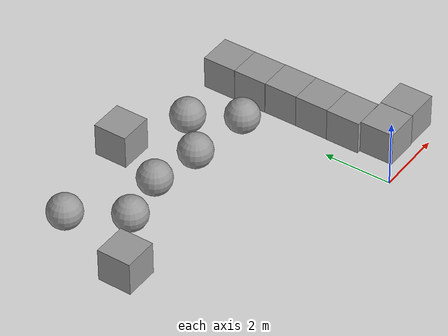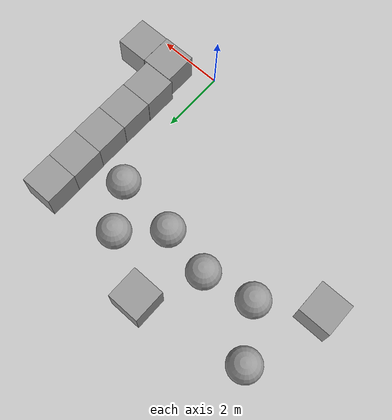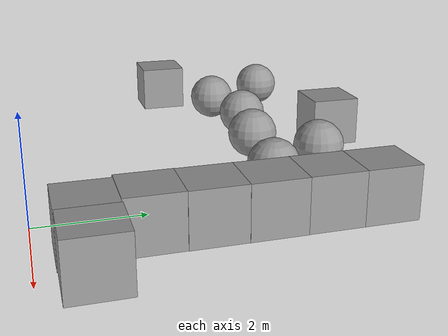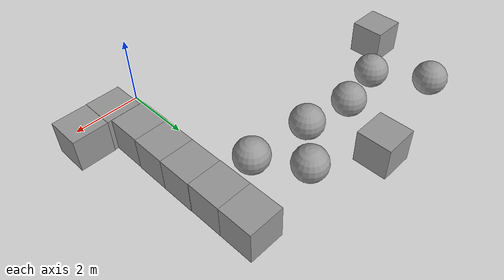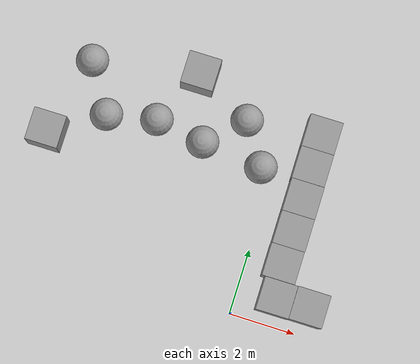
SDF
<sdf version="1.6">
 <world name="default">
  <gravity>0 0 -9.8</gravity>
  <magnetic_field>6e-06 2.3e-05 -4.2e-05</magnetic_field>
  <atmosphere type="adiabatic"/>
  <physics name="default_physics" default="0" type="ode">
   <max_step_size>0.001</max_step_size>
   <real_time_factor>1</real_time_factor>
   <real_time_update_rate>1000</real_time_update_rate>
  </physics>
  <scene>
   <ambient>0.4 0.4 0.4 1</ambient>
   <background>0.7 0.7 0.7 1</background>
   <shadows>1</shadows>
   <grid>0</grid>
   <origin_visual>0</origin_visual>
  </scene>
  <spherical_coordinates>
   <surface_model>EARTH_WGS84</surface_model>
   <latitude_deg>0</latitude_deg>
   <longitude_deg>0</longitude_deg>
   <elevation>0</elevation>
   <heading_deg>0</heading_deg>
  </spherical_coordinates>
  <light name="RetailShop_CeilingLight_001" type="point">
   <pose>2.77442 -3.62815 3.17847 0 -0 0</pose>
   <diffuse>0.5 0.5 0.5 1</diffuse>
   <specular>0.1 0.1 0.1 1</specular>
   <attenuation>
    <range>20</range>
    <constant>0.32</constant>
    <linear>0.01</linear>
    <quadratic>0.03</quadratic>
   </attenuation>
   <cast_shadows>0</cast_shadows>
   <direction>0 0 -1</direction>
  </light>
  <light name="RetailShop_CeilingLight_002" type="point">
   <pose>5.38399 -5.38371 3.17847 0 -0 0</pose>
   <diffuse>0.5 0.5 0.5 1</diffuse>
   <specular>0.1 0.1 0.1 1</specular>
   <attenuation>
    <range>20</range>
    <constant>0.32</constant>
    <linear>0.01</linear>
    <quadratic>0.03</quadratic>
   </attenuation>
   <cast_shadows>0</cast_shadows>
   <direction>0 0 -1</direction>
  </light>
  <light name="RetailShop_CeilingLight_003" type="point">
   <pose>5.38399 0.04192 3.17847 0 -0 0</pose>
   <diffuse>0.5 0.5 0.5 1</diffuse>
   <specular>0.1 0.1 0.1 1</specular>
   <attenuation>
    <range>20</range>
    <constant>0.32</constant>
    <linear>0.01</linear>
    <quadratic>0.03</quadratic>
   </attenuation>
   <cast_shadows>0</cast_shadows>
   <direction>0 0 -1</direction>
  </light>
  <light name="RetailShop_CeilingLight_004" type="point">
   <pose>-3.21067 -5.38371 3.17847 0 -0 0</pose>
   <diffuse>0.5 0.5 0.5 1</diffuse>
   <specular>0.1 0.1 0.1 1</specular>
   <attenuation>
    <range>20</range>
    <constant>0.32</constant>
    <linear>0.01</linear>
    <quadratic>0.03</quadratic>
   </attenuation>
   <cast_shadows>0</cast_shadows>
   <direction>0 0 -1</direction>
  </light>
  <light name="RetailShop_CeilingLight_005" type="point">
   <pose>-3.271 2.68593 3.17847 0 -0 0</pose>
   <diffuse>0.5 0.5 0.5 1</diffuse>
   <specular>0.1 0.1 0.1 1</specular>
   <attenuation>
    <range>20</range>
    <constant>0.32</constant>
    <linear>0.01</linear>
    <quadratic>0.03</quadratic>
   </attenuation>
   <cast_shadows>0</cast_shadows>
   <direction>0 0 -1</direction>
  </light>
  <light name="RetailShop_CeilingLight_006" type="point">
   <pose>1.4932 4.69237 3.17847 0 -0 0</pose>
   <diffuse>0.5 0.5 0.5 1</diffuse>
   <specular>0.1 0.1 0.1 1</specular>
   <attenuation>
    <range>20</range>
    <constant>0.32</constant>
    <linear>0.01</linear>
    <quadratic>0.03</quadratic>
   </attenuation>
   <cast_shadows>0</cast_shadows>
   <direction>0 0 -1</direction>
  </light>
  <audio><device>default</device></audio>
  <light name="user_directional_light_0" type="directional">
   <pose>1.49712 -12.0596 1 0 -0 0</pose>
   <diffuse>0.5 0.5 0.5 1</diffuse>
   <specular>0.1 0.1 0.1 1</specular>
   <direction>0.1 0.1 -0.9</direction>
   <attenuation>
    <range>20</range>
    <constant>0.5</constant>
    <linear>0.01</linear>
    <quadratic>0.001</quadratic>
   </attenuation>
  </light>
  <model name="unit_sphere_1">
   <pose>-5.30182 4.57371 0.513382 0 -0 0</pose>
   <link name="link">
    <inertial>
     <mass>1</mass>
     <inertia><ixx>0.1</ixx><ixy>0</ixy><ixz>0</ixz><iyy>0.1</iyy><iyz>0</iyz><izz>0.1</izz></inertia>
    </inertial>
    <collision name="collision"><geometry><sphere><radius>0.5</radius></sphere></geometry></collision>
    <visual name="visual">
     <geometry><sphere><radius>0.5</radius></sphere></geometry>
     <material>
      <script><name>Gazebo/Grey</name><uri>file://media/materials/scripts/gazebo.material</uri></script>
     </material>
    </visual>
   </link>
  </model>
  <model name="unit_box">
   <pose>-2.96245 6.59694 0.513382 -0 -0 -2.1e-05</pose>
   <link name="link">
    <inertial>
     <mass>1</mass>
     <inertia>
      <ixx>0.166667</ixx>
      <ixy>0</ixy>
      <ixz>0</ixz>
      <iyy>0.166667</iyy>
      <iyz>0</iyz>
      <izz>0.166667</izz>
     </inertia>
    </inertial>
    <collision name="collision"><geometry><box><size>1 1 1</size></box></geometry></collision>
    <visual name="visual">
     <geometry><box><size>1 1 1</size></box></geometry>
     <material>
      <script><name>Gazebo/Grey</name><uri>file://media/materials/scripts/gazebo.material</uri></script>
     </material>
    </visual>
   </link>
  </model>
  <model name="unit_box_0">
   <pose>-6.84715 3.59268 0.513382 -0 -0 -0</pose>
   <link name="link">
    <inertial>
     <mass>1</mass>
     <inertia>
      <ixx>0.166667</ixx>
      <ixy>0</ixy>
      <ixz>0</ixz>
      <iyy>0.166667</iyy>
      <iyz>0</iyz>
      <izz>0.166667</izz>
     </inertia>
    </inertial>
    <collision name="collision"><geometry><box><size>1 1 1</size></box></geometry></collision>
    <visual name="visual">
     <geometry><box><size>1 1 1</size></box></geometry>
     <material>
      <script><name>Gazebo/Grey</name><uri>file://media/materials/scripts/gazebo.material</uri></script>
     </material>
    </visual>
   </link>
  </model>
  <model name="unit_sphere_2">
   <pose>-6.20529 6.0175 0.513382 0 -0 0</pose>
   <link name="link">
    <inertial>
     <mass>1</mass>
     <inertia><ixx>0.1</ixx><ixy>0</ixy><ixz>0</ixz><iyy>0.1</iyy><iyz>0</iyz><izz>0.1</izz></inertia>
    </inertial>
    <collision name="collision"><geometry><sphere><radius>0.5</radius></sphere></geometry></collision>
    <visual name="visual">
     <geometry><sphere><radius>0.5</radius></sphere></geometry>
     <material>
      <script><name>Gazebo/Grey</name><uri>file://media/materials/scripts/gazebo.material</uri></script>
     </material>
    </visual>
   </link>
  </model>
  <model name="unit_box_1">
   <pose>2.14945 0.853784 0.513381 1e-06 9e-06 -0.000312</pose>
   <link name="link">
    <inertial>
     <mass>1</mass>
     <inertia>
      <ixx>0.166667</ixx>
      <ixy>0</ixy>
      <ixz>0</ixz>
      <iyy>0.166667</iyy>
      <iyz>0</iyz>
      <izz>0.166667</izz>
     </inertia>
    </inertial>
    <collision name="collision"><geometry><box><size>1 1 1</size></box></geometry></collision>
    <visual name="visual">
     <geometry><box><size>1 1 1</size></box></geometry>
     <material>
      <script><name>Gazebo/Grey</name><uri>file://media/materials/scripts/gazebo.material</uri></script>
     </material>
    </visual>
   </link>
  </model>
  <model name="unit_box_2">
   <pose>1.14803 0.840108 0.513382 0 -0 0.002564</pose>
   <link name="link">
    <inertial>
     <mass>1</mass>
     <inertia>
      <ixx>0.166667</ixx>
      <ixy>0</ixy>
      <ixz>0</ixz>
      <iyy>0.166667</iyy>
      <iyz>0</iyz>
      <izz>0.166667</izz>
     </inertia>
    </inertial>
    <collision name="collision"><geometry><box><size>1 1 1</size></box></geometry></collision>
    <visual name="visual">
     <geometry><box><size>1 1 1</size></box></geometry>
     <material>
      <script><name>Gazebo/Grey</name><uri>file://media/materials/scripts/gazebo.material</uri></script>
     </material>
    </visual>
   </link>
  </model>
  <model name="unit_box_3">
   <pose>1.03556 1.84428 0.513377 -1e-06 -8e-06 0.002206</pose>
   <link name="link">
    <inertial>
     <mass>1</mass>
     <inertia>
      <ixx>0.166667</ixx>
      <ixy>0</ixy>
      <ixz>0</ixz>
      <iyy>0.166667</iyy>
      <iyz>0</iyz>
      <izz>0.166667</izz>
     </inertia>
    </inertial>
    <collision name="collision"><geometry><box><size>1 1 1</size></box></geometry></collision>
    <visual name="visual">
     <geometry><box><size>1 1 1</size></box></geometry>
     <material>
      <script><name>Gazebo/Grey</name><uri>file://media/materials/scripts/gazebo.material</uri></script>
     </material>
    </visual>
   </link>
  </model>
  <model name="unit_box_4">
   <pose>1.04336 2.84453 0.513382 0 -0 0.002335</pose>
   <link name="link">
    <inertial>
     <mass>1</mass>
     <inertia>
      <ixx>0.166667</ixx>
      <ixy>0</ixy>
      <ixz>0</ixz>
      <iyy>0.166667</iyy>
      <iyz>0</iyz>
      <izz>0.166667</izz>
     </inertia>
    </inertial>
    <collision name="collision"><geometry><box><size>1 1 1</size></box></geometry></collision>
    <visual name="visual">
     <geometry><box><size>1 1 1</size></box></geometry>
     <material>
      <script><name>Gazebo/Grey</name><uri>file://media/materials/scripts/gazebo.material</uri></script>
     </material>
    </visual>
   </link>
  </model>
  <model name="unit_box_5">
   <pose>1.04417 3.84474 0.513382 0 -0 0.002259</pose>
   <link name="link">
    <inertial>
     <mass>1</mass>
     <inertia>
      <ixx>0.166667</ixx>
      <ixy>0</ixy>
      <ixz>0</ixz>
      <iyy>0.166667</iyy>
      <iyz>0</iyz>
      <izz>0.166667</izz>
     </inertia>
    </inertial>
    <collision name="collision"><geometry><box><size>1 1 1</size></box></geometry></collision>
    <visual name="visual">
     <geometry><box><size>1 1 1</size></box></geometry>
     <material>
      <script><name>Gazebo/Grey</name><uri>file://media/materials/scripts/gazebo.material</uri></script>
     </material>
    </visual>
   </link>
  </model>
  <model name="unit_box_6">
   <pose>1.03397 4.84474 0.513382 0 -0 0.002249</pose>
   <link name="link">
    <inertial>
     <mass>1</mass>
     <inertia>
      <ixx>0.166667</ixx>
      <ixy>0</ixy>
      <ixz>0</ixz>
      <iyy>0.166667</iyy>
      <iyz>0</iyz>
      <izz>0.166667</izz>
     </inertia>
    </inertial>
    <collision name="collision"><geometry><box><size>1 1 1</size></box></geometry></collision>
    <visual name="visual">
     <geometry><box><size>1 1 1</size></box></geometry>
     <material>
      <script><name>Gazebo/Grey</name><uri>file://media/materials/scripts/gazebo.material</uri></script>
     </material>
    </visual>
   </link>
  </model>
  <model name="unit_box_7">
   <pose>1.03133 5.84475 0.513382 0 -0 0.002209</pose>
   <link name="link">
    <inertial>
     <mass>1</mass>
     <inertia>
      <ixx>0.166667</ixx>
      <ixy>0</ixy>
      <ixz>0</ixz>
      <iyy>0.166667</iyy>
      <iyz>0</iyz>
      <izz>0.166667</izz>
     </inertia>
    </inertial>
    <collision name="collision"><geometry><box><size>1 1 1</size></box></geometry></collision>
    <visual name="visual">
     <geometry><box><size>1 1 1</size></box></geometry>
     <material>
      <script><name>Gazebo/Grey</name><uri>file://media/materials/scripts/gazebo.material</uri></script>
     </material>
    </visual>
   </link>
  </model>
  <model name="unit_sphere">
   <pose>-2.30146 4.63474 0.513382 0 -0 0</pose>
   <link name="link">
    <inertial>
     <mass>1</mass>
     <inertia><ixx>0.1</ixx><ixy>0</ixy><ixz>0</ixz><iyy>0.1</iyy><iyz>0</iyz><izz>0.1</izz></inertia>
    </inertial>
    <collision name="collision"><geometry><sphere><radius>0.5</radius></sphere></geometry></collision>
    <visual name="visual">
     <geometry><sphere><radius>0.5</radius></sphere></geometry>
     <material>
      <script><name>Gazebo/Grey</name><uri>file://media/materials/scripts/gazebo.material</uri></script>
     </material>
    </visual>
   </link>
  </model>
  <model name="unit_sphere_3">
   <pose>-1.22138 5.66205 0.513382 0 -0 0</pose>
   <link name="link">
    <inertial>
     <mass>1</mass>
     <inertia><ixx>0.1</ixx><ixy>0</ixy><ixz>0</ixz><iyy>0.1</iyy><iyz>0</iyz><izz>0.1</izz></inertia>
    </inertial>
    <collision name="collision"><geometry><sphere><radius>0.5</radius></sphere></geometry></collision>
    <visual name="visual">
     <geometry><sphere><radius>0.5</radius></sphere></geometry>
     <material>
      <script><name>Gazebo/Grey</name><uri>file://media/materials/scripts/gazebo.material</uri></script>
     </material>
    </visual>
   </link>
  </model>
  <model name="unit_sphere_5">
   <pose>-0.4129 4.42825 0.513382 0 -0 0</pose>
   <link name="link">
    <inertial>
     <mass>1</mass>
     <inertia><ixx>0.1</ixx><ixy>0</ixy><ixz>0</ixz><iyy>0.1</iyy><iyz>0</iyz><izz>0.1</izz></inertia>
    </inertial>
    <collision name="collision"><geometry><sphere><radius>0.5</radius></sphere></geometry></collision>
    <visual name="visual">
     <geometry><sphere><radius>0.5</radius></sphere></geometry>
     <material>
      <script><name>Gazebo/Grey</name><uri>file://media/materials/scripts/gazebo.material</uri></script>
     </material>
    </visual>
   </link>
  </model>
  <model name="unit_sphere_0">
   <pose>-3.8088 4.88042 0.513382 0 -0 0</pose>
   <link name="link">
    <inertial>
     <mass>1</mass>
     <inertia><ixx>0.1</ixx><ixy>0</ixy><ixz>0</ixz><iyy>0.1</iyy><iyz>0</iyz><izz>0.1</izz></inertia>
    </inertial>
    <collision name="collision"><geometry><sphere><radius>0.5</radius></sphere></geometry></collision>
    <visual name="visual">
     <geometry><sphere><radius>0.5</radius></sphere></geometry>
     <material>
      <script><name>Gazebo/Grey</name><uri>file://media/materials/scripts/gazebo.material</uri></script>
     </material>
    </visual>
   </link>
  </model>
 </world>
</sdf>
